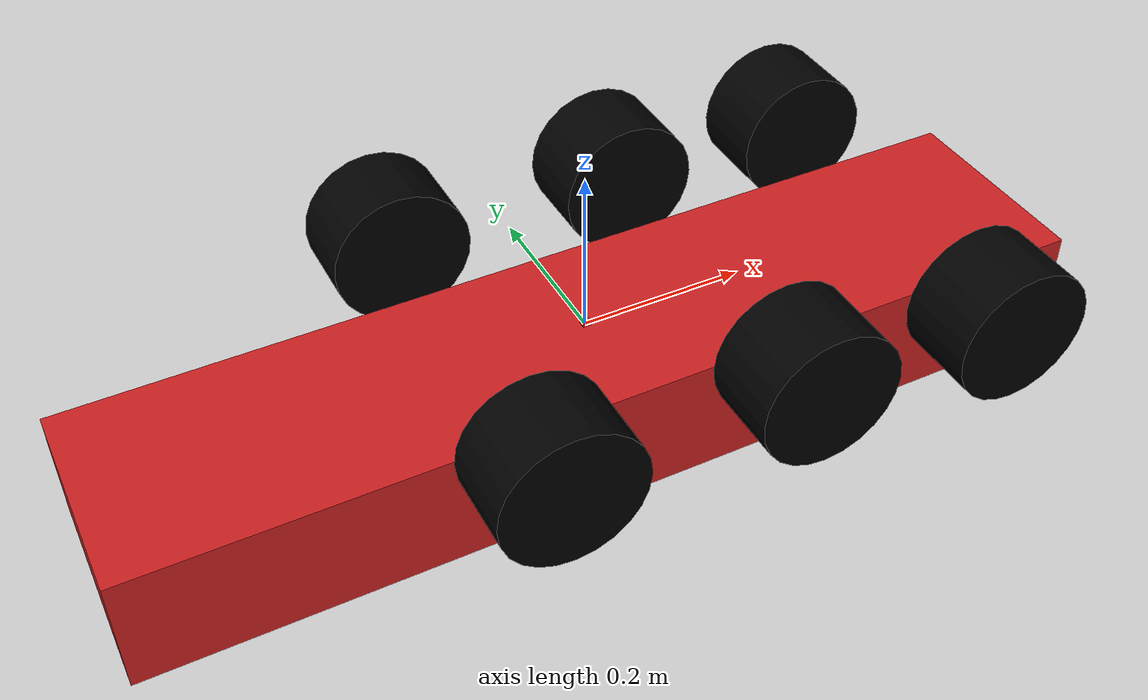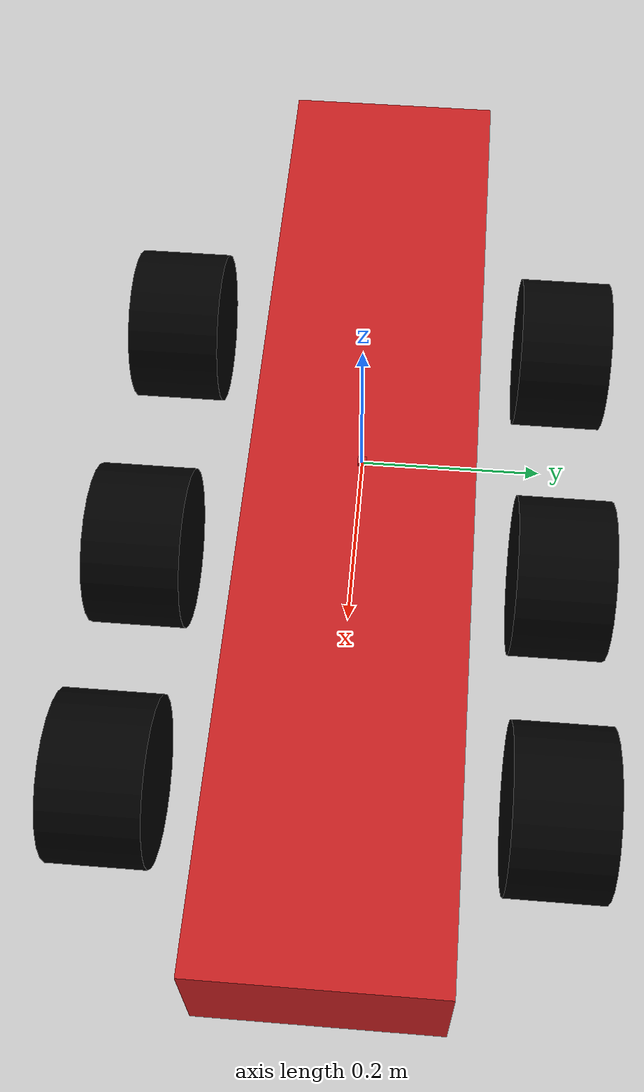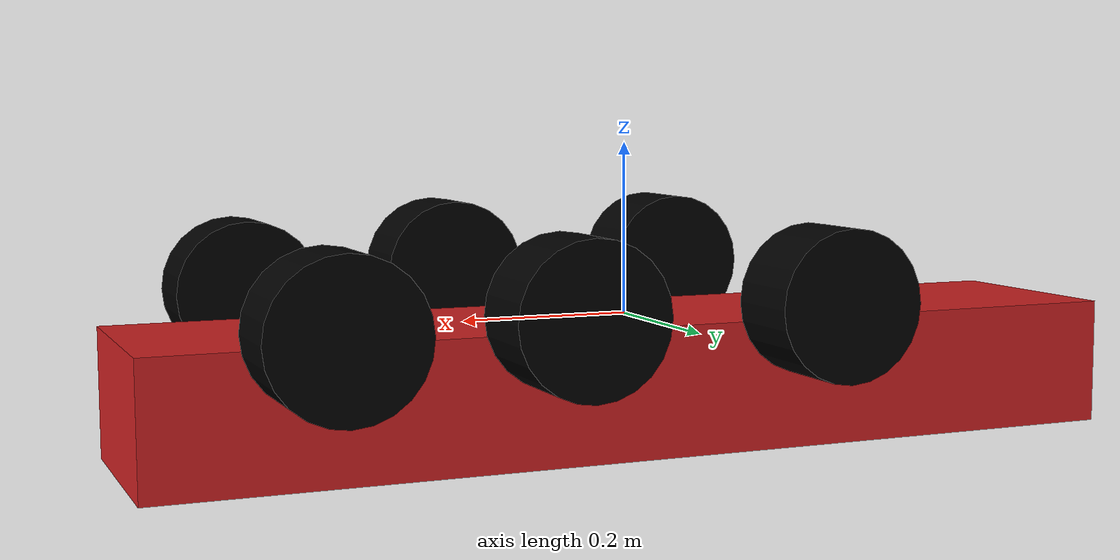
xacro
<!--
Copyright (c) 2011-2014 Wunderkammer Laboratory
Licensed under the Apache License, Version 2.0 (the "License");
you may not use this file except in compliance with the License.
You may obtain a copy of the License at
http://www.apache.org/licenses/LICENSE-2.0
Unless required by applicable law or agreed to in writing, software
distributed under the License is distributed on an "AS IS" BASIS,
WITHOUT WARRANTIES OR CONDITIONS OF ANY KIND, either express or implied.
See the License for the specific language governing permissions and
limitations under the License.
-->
<?xml version="1.0"?>

<robot name="em_1" xmlns:xacro="http://www.ros.org/wiki/xacro">
  <!-- Degree-to-radian conversions -->
  <xacro:property name="degrees_45" value="0.785398163"/>
  <xacro:property name="degrees_90" value="1.57079633"/>

  <!-- chassis_length is measured along the x axis, chassis_width
       along the y axis, and chassis_height along the z axis. -->
  <xacro:property name="chassis_length" value="1.17"/>
  <xacro:property name="chassis_width" value="0.26"/>
  <xacro:property name="chassis_height" value="0.15"/>
  <xacro:property name="chassis_mass" value="2.788"/>

  <xacro:property name="hub_dia" value="0.09652"/>
  <xacro:property name="tire_dia" value="0.17"/>
  <xacro:property name="tire_width" value="0.1"/>
  <xacro:property name="hex_hub_depth" value="0.01445"/>
  <xacro:property name="wheel_mass" value="0.29"/>

  <xacro:property name="wheelbase" value="0.3"/> <!--distancia entre rueda delantera y trasera-->
  <xacro:property name="hex_hub_dist" value="0.5"/><!--distancia entre rueda izquierda y derecha-->
  <xacro:property name="axle_length" value="0.03"/>
  <xacro:property name="wheel_travel" value="0.2"/>
  <xacro:property name="shock_z_offset" value="0.0655"/>

  <xacro:property name="shock_eff_limit" value="12.5106"/>
  <xacro:property name="shock_vel_limit" value="1000"/>

  <xacro:property name="axle_eff_limit" value="5.12766"/>
  <xacro:property name="axle_vel_limit" value="244.8696"/>

  <!-- These constants are used to simulate a Traxxas 2056 servo operated at
       6 V. servo_stall_torque is measured in N m. servo_no_load_speed is
       measured in rad/s. -->
  <xacro:property name="servo_stall_torque" value="0.5649"/>
  <xacro:property name="servo_no_load_speed" value="4.553"/>

  <material name="chassis_mat">
    <color rgba="0.80078125 0.12890625 0.1328125 1.0"/>
  </material>
  <material name="tire_mat">
    <color rgba="0 0 0 1"/>
  </material>

  <!-- Null inertial element. This is needed to make the model work with
       Gazebo. -->
  <xacro:macro name="null_inertial">
    <inertial>
      <mass value="0.001"/>
      <inertia ixx="0.001" ixy="0" ixz="0" iyy="0.001" iyz="0" izz="0.001"/>
    </inertial>
  </xacro:macro>

  <!-- Inertia of a solid cuboid. Width is measured along the x axis, depth
       along the y axis, and height along the z axis. -->
  <xacro:macro name="solid_cuboid_inertial"
               params="width depth height mass *origin">
    <inertial>
      <xacro:insert_block name="origin"/>
      <mass value="${mass}"/>
      <inertia ixx="${mass * (depth * depth + height * height) / 12}"
               ixy="0" ixz="0"
               iyy="${mass * (width * width + height * height) / 12}"
               iyz="0"
               izz="${mass * (width * width + depth * depth) / 12}"/>
    </inertial>
  </xacro:macro>

  <xacro:macro name="thick_walled_tube_inertial"
               params="inner_rad outer_rad height mass">
    <inertial>
      <mass value="${mass}"/>
      <inertia ixx="${(1 / 12) * mass * (3 * (inner_rad * inner_rad +
                    outer_rad * outer_rad) + height * height)}"
               ixy="0" ixz="0"
               iyy="${(1 / 12) * mass * (3 * (inner_rad * inner_rad +
                    outer_rad * outer_rad) + height * height)}"
               iyz="0"
               izz="${mass * (inner_rad * inner_rad +
                    outer_rad * outer_rad) / 2}"/>
    </inertial>
  </xacro:macro>

  <!-- Shock absorber -->
  <xacro:macro name="shock"
               params="lr_prefix fr_prefix lr_reflect fr_reflect child">
    <joint name="${lr_prefix}_${fr_prefix}_shock" type="prismatic">
      <parent link="chassis"/>
      <child link="${child}"/>

      <origin xyz="${fr_reflect * wheelbase / 2}
                   ${lr_reflect * ((hex_hub_dist / 2) - axle_length)}
                   ${(wheel_travel / 2) - shock_z_offset}"/>
      <axis xyz="0 0 -1"/>
      <limit lower="${-wheel_travel / 2}" upper="${wheel_travel / 2}"
             effort="${shock_eff_limit}" velocity="${shock_vel_limit}"/>
    </joint>
    <transmission name="${lr_prefix}_${fr_prefix}_shock_trans">
      <type>transmission_interface/SimpleTransmission</type>
      <joint name="${lr_prefix}_${fr_prefix}_shock">
        <hardwareInterface>EffortJointInterface</hardwareInterface>
      </joint>
      <actuator name="${lr_prefix}_${fr_prefix}_shock_act">
        <!-- This hardwareInterface element exists for compatibility
             with ROS Hydro. -->
        <hardwareInterface>EffortJointInterface</hardwareInterface>
        <mechanicalReduction>1</mechanicalReduction>
      </actuator>
    </transmission>
  </xacro:macro>

  <!-- The "wheel" macro defines an axle carrier, axle, and wheel. -->
  <xacro:macro name="wheel" params="lr_prefix fr_prefix lr_reflect">
    <link name="${lr_prefix}_${fr_prefix}_axle_carrier">
      <xacro:null_inertial/>
    </link>

    <!-- The left and right axles have the same axis so that identical
         rotation values cause the wheels to rotate in the same direction. -->
    <joint name="${lr_prefix}_${fr_prefix}_axle" type="continuous">
      <parent link="${lr_prefix}_${fr_prefix}_axle_carrier"/>
      <child link="${lr_prefix}_${fr_prefix}_wheel"/>
      <origin rpy="${degrees_90} 0 0"/>
      <axis xyz="0 0 -1"/>
      <limit effort="${axle_eff_limit}" velocity="${axle_vel_limit}"/>
    </joint>
    <transmission name="${lr_prefix}_${fr_prefix}_axle_trans">
      <type>transmission_interface/SimpleTransmission</type>
      <joint name="${lr_prefix}_${fr_prefix}_axle">
        <hardwareInterface>EffortJointInterface</hardwareInterface>
      </joint>
      <actuator name="${lr_prefix}_${fr_prefix}_axle_act">
        <!-- This hardwareInterface element exists for compatibility
             with ROS Hydro. -->
        <hardwareInterface>EffortJointInterface</hardwareInterface>
        <mechanicalReduction>1</mechanicalReduction>
      </actuator>
    </transmission>

    <link name="${lr_prefix}_${fr_prefix}_wheel">
      <visual>
        <origin xyz="0
                     ${lr_reflect * (axle_length - (tire_width /
                     2 - hex_hub_depth))}
                     0"/>
        <geometry>
          <cylinder radius="${tire_dia / 2}" length="${tire_width}"/>
        </geometry>
        <material name="tire_mat"/>
      </visual>

      <collision>
        <origin xyz="0
                     ${lr_reflect * (axle_length - (tire_width /
                     2 - hex_hub_depth))}
                     0"/>
        <geometry>
          <cylinder radius="${tire_dia / 2}" length="${tire_width}"/>
        </geometry>
      </collision>

      <xacro:thick_walled_tube_inertial
          inner_rad="${hub_dia / 2}" outer_rad="${tire_dia / 2}"
          height="${tire_width}" mass="${wheel_mass}"/>
    </link>

    <gazebo reference="${lr_prefix}_${fr_prefix}_wheel">
      <material>Gazebo/Black</material>
    </gazebo>
  </xacro:macro>

  <!-- Front wheel -->
  <xacro:macro name="front_wheel"
               params="lr_prefix fr_prefix lr_reflect fr_reflect">
    <xacro:shock lr_prefix="${lr_prefix}" fr_prefix="${fr_prefix}"
                 lr_reflect="${lr_reflect}" fr_reflect="${fr_reflect}"
                 child="${lr_prefix}_steering_link"/>

    <link name="${lr_prefix}_steering_link">
      <xacro:null_inertial/>
    </link>

    <joint name="${lr_prefix}_steering_joint" type="revolute">
      <parent link="${lr_prefix}_steering_link"/>
      <child link="${lr_prefix}_${fr_prefix}_axle_carrier"/>
      <axis xyz="0 0 1"/>
      <limit lower="${-degrees_45}" upper="${degrees_45}"
             effort="${servo_stall_torque}" velocity="${servo_no_load_speed}"/>
    </joint>
    <transmission name="${lr_prefix}_steering_trans">
      <type>transmission_interface/SimpleTransmission</type>
      <joint name="${lr_prefix}_steering_joint">
        <hardwareInterface>EffortJointInterface</hardwareInterface>
      </joint>
      <actuator name="${lr_prefix}_steering_act">
        <!-- This hardwareInterface element exists for compatibility
             with ROS Hydro. -->
        <hardwareInterface>EffortJointInterface</hardwareInterface>
        <mechanicalReduction>1</mechanicalReduction>
      </actuator>
    </transmission>

    <xacro:wheel lr_prefix="${lr_prefix}" fr_prefix="${fr_prefix}"
                 lr_reflect="${lr_reflect}"/>
  </xacro:macro>

  <!-- Rear wheel -->
  <xacro:macro name="rear_wheel"
               params="lr_prefix fr_prefix lr_reflect fr_reflect">
    <xacro:shock lr_prefix="${lr_prefix}" fr_prefix="${fr_prefix}"
                 lr_reflect="${lr_reflect}" fr_reflect="${fr_reflect}"
                 child="${lr_prefix}_${fr_prefix}_axle_carrier"/>
    <xacro:wheel lr_prefix="${lr_prefix}" fr_prefix="${fr_prefix}"
                 lr_reflect="${lr_reflect}"/>
  </xacro:macro>

  <!-- base_link must have geometry so that its axes can be displayed in
       rviz. -->
  <link name="base_link">
    <visual>
      <geometry>
        <box size="0.01 0.01 0.01"/>
      </geometry>
      <material name="chassis_mat"/>
    </visual>
  </link>
  <gazebo reference="base_link">
    <material>Gazebo/Red</material>
  </gazebo>

  <!-- Chassis -->
  <link name="chassis">
    <visual>
      <origin xyz="0 0 ${-chassis_height / 2}"/>
      <geometry>
        <box size="${chassis_length} ${chassis_width} ${chassis_height}"/>
      </geometry>
      <material name="chassis_mat"/>
    </visual>

    <collision>
      <origin xyz="0 0 ${-chassis_height / 2}"/>
      <geometry>
        <box size="${chassis_length} ${chassis_width} ${chassis_height}"/>
      </geometry>
    </collision>

    <xacro:solid_cuboid_inertial
        width="${chassis_length}" depth="${chassis_width}"
        height="${chassis_height}" mass="${chassis_mass}">
      <origin xyz="0 0 ${-chassis_height / 2}"/>
    </xacro:solid_cuboid_inertial>
  </link>
  <gazebo reference="chassis">
    <material>Gazebo/Red</material>
  </gazebo>

  <joint name="base_link_to_chassis" type="fixed">
    <parent link="base_link"/>
    <child link="chassis"/>
  </joint>

  <!-- Wheels -->
  <xacro:front_wheel lr_prefix="left" fr_prefix="front"
                     lr_reflect="1" fr_reflect="1"/>
  <xacro:front_wheel lr_prefix="right" fr_prefix="front"
                     lr_reflect="-1" fr_reflect="1"/>
  <xacro:rear_wheel lr_prefix="left" fr_prefix="rear"
                    lr_reflect="1" fr_reflect="-1"/>
  <xacro:rear_wheel lr_prefix="right" fr_prefix="rear"
                    lr_reflect="-1" fr_reflect="-1"/>

   <joint name="left_front_shock_1" type="prismatic">
      <parent link="chassis"/>
      <child link="left_steering_link_1"/>

      <origin xyz="${2.7 * wheelbase / 2}
                   ${1 * ((hex_hub_dist / 2) - axle_length)}
                   ${(wheel_travel / 2) - shock_z_offset}"/>                     <!--aqui, distancia entre ruedas -->
      <axis xyz="0 0 -1"/>
      <limit lower="${-wheel_travel / 2}" upper="${wheel_travel / 2}"
             effort="${shock_eff_limit}" velocity="${shock_vel_limit}"/>
    </joint>
    <transmission name="left_front_shock_trans_1">
      <type>transmission_interface/SimpleTransmission</type>
      <joint name="left_front_shock_1">
        <hardwareInterface>EffortJointInterface</hardwareInterface>
      </joint>
      <actuator name="left_front_shock_act_1">
        <!-- This hardwareInterface element exists for compatibility
             with ROS Hydro. -->
        <hardwareInterface>EffortJointInterface</hardwareInterface>
        <mechanicalReduction>1</mechanicalReduction>
      </actuator>
    </transmission>

    <link name="left_steering_link_1">
      <xacro:null_inertial/>
    </link>

    <joint name="left_steering_joint_1" type="revolute">
      <parent link="left_steering_link_1"/>
      <child link="left_front_axle_carrier_1"/>
      <axis xyz="0 0 1"/>
      <limit lower="${-degrees_45}" upper="${degrees_45}"
             effort="${servo_stall_torque}" velocity="${servo_no_load_speed}"/>
    </joint>
    <transmission name="left_steering_trans_1">
      <type>transmission_interface/SimpleTransmission</type>
      <joint name="left_steering_joint_1">
        <hardwareInterface>EffortJointInterface</hardwareInterface>
      </joint>
      <actuator name="left_steering_act_1">
        <hardwareInterface>EffortJointInterface</hardwareInterface>
        <mechanicalReduction>1</mechanicalReduction>
      </actuator>
    </transmission>

    <link name="left_front_axle_carrier_1">
      <xacro:null_inertial/>
    </link>

    <joint name="left_front_axle_1" type="continuous">
      <parent link="left_front_axle_carrier_1"/>
      <child link="left_front_wheel_1"/>
      <origin rpy="${degrees_90} 0 0"/>
      <axis xyz="0 0 -1"/>
      <limit effort="${axle_eff_limit}" velocity="${axle_vel_limit}"/>
    </joint>
    <transmission name="left_front_axle_trans_1">
      <type>transmission_interface/SimpleTransmission</type>
      <joint name="left_front_axle_1">
        <hardwareInterface>EffortJointInterface</hardwareInterface>
      </joint>
      <actuator name="left_front_axle_act_1">
        <hardwareInterface>EffortJointInterface</hardwareInterface>
        <mechanicalReduction>1</mechanicalReduction>
      </actuator>
    </transmission>

    <link name="left_front_wheel_1">
      <visual>
        <origin xyz="0
                     ${2 * (axle_length - (tire_width /
                     2 - hex_hub_depth))}
                     0"/>     		<!--aqui-->
        <geometry>
          <cylinder radius="${tire_dia / 2}" length="${tire_width}"/>
        </geometry>
        <material name="tire_mat"/>
      </visual>

      <collision>
        <origin xyz="0
                     ${2 * (axle_length - (tire_width /
                     2 - hex_hub_depth))}
                     0"/>                                 <!--aqui-->
        <geometry>
          <cylinder radius="${tire_dia / 2}" length="${tire_width}"/>
        </geometry>
      </collision>

      <xacro:thick_walled_tube_inertial
          inner_rad="${hub_dia / 2}" outer_rad="${tire_dia / 2}"
          height="${tire_width}" mass="${wheel_mass}"/>
    </link>

    <gazebo reference="left_front_wheel_1">
      <material>Gazebo/Black</material>
    </gazebo>

<joint name="right_front_shock_1" type="prismatic">
      <parent link="chassis"/>
      <child link="right_steering_link_1"/>

      <origin xyz="${2.7 * wheelbase / 2}
                   ${-1 * ((hex_hub_dist / 2) - axle_length)}
                   ${(wheel_travel / 2) - shock_z_offset}"/>                     <!--aqui-->
      <axis xyz="0 0 -1"/>
      <limit lower="${-wheel_travel / 2}" upper="${wheel_travel / 2}"
             effort="${shock_eff_limit}" velocity="${shock_vel_limit}"/>
    </joint>
    <transmission name="right_front_shock_trans_1">
      <type>transmission_interface/SimpleTransmission</type>
      <joint name="right_front_shock_1">
        <hardwareInterface>EffortJointInterface</hardwareInterface>
      </joint>
      <actuator name="right_front_shock_act_1">
        <!-- This hardwareInterface element exists for compatibility
             with ROS Hydro. -->
        <hardwareInterface>EffortJointInterface</hardwareInterface>
        <mechanicalReduction>1</mechanicalReduction>
      </actuator>
    </transmission>

    <link name="right_steering_link_1">
      <xacro:null_inertial/>
    </link>

    <joint name="right_steering_joint_1" type="revolute">
      <parent link="right_steering_link_1"/>
      <child link="right_front_axle_carrier_1"/>
      <axis xyz="0 0 1"/>
      <limit lower="${-degrees_45}" upper="${degrees_45}"
             effort="${servo_stall_torque}" velocity="${servo_no_load_speed}"/>
    </joint>
    <transmission name="right_steering_trans_1">
      <type>transmission_interface/SimpleTransmission</type>
      <joint name="right_steering_joint_1">
        <hardwareInterface>EffortJointInterface</hardwareInterface>
      </joint>
      <actuator name="right_steering_act_1">
        <hardwareInterface>EffortJointInterface</hardwareInterface>
        <mechanicalReduction>1</mechanicalReduction>
      </actuator>
    </transmission>

    <link name="right_front_axle_carrier_1">
      <xacro:null_inertial/>
    </link>

    <joint name="right_front_axle_1" type="continuous">
      <parent link="right_front_axle_carrier_1"/>
      <child link="right_front_wheel_1"/>
      <origin rpy="${degrees_90} 0 0"/>
      <axis xyz="0 0 -1"/>
      <limit effort="${axle_eff_limit}" velocity="${axle_vel_limit}"/>
    </joint>
    <transmission name="right_front_axle_trans_1">
      <type>transmission_interface/SimpleTransmission</type>
      <joint name="right_front_axle_1">
        <hardwareInterface>EffortJointInterface</hardwareInterface>
      </joint>
      <actuator name="right_front_axle_act_1">
        <hardwareInterface>EffortJointInterface</hardwareInterface>
        <mechanicalReduction>1</mechanicalReduction>
      </actuator>
    </transmission>

    <link name="right_front_wheel_1">
      <visual>
        <origin xyz="0
                     ${2 * (axle_length - (tire_width /
                     2 - hex_hub_depth))}
                     0"/>     		<!--aqui-->
        <geometry>
          <cylinder radius="${tire_dia / 2}" length="${tire_width}"/>
        </geometry>
        <material name="tire_mat"/>
      </visual>

      <collision>
        <origin xyz="0
                     ${2 * (axle_length - (tire_width /
                     2 - hex_hub_depth))}
                     0"/>                                 <!--aqui-->
        <geometry>
          <cylinder radius="${tire_dia / 2}" length="${tire_width}"/>
        </geometry>
      </collision>

      <xacro:thick_walled_tube_inertial
          inner_rad="${hub_dia / 2}" outer_rad="${tire_dia / 2}"
          height="${tire_width}" mass="${wheel_mass}"/>
    </link>

    <gazebo reference="right_front_wheel_1">
      <material>Gazebo/Black</material>
    </gazebo>

  <gazebo>
    <plugin name="gazebo_ros_control" filename="libgazebo_ros_control.so"/>
  </gazebo>
</robot>
